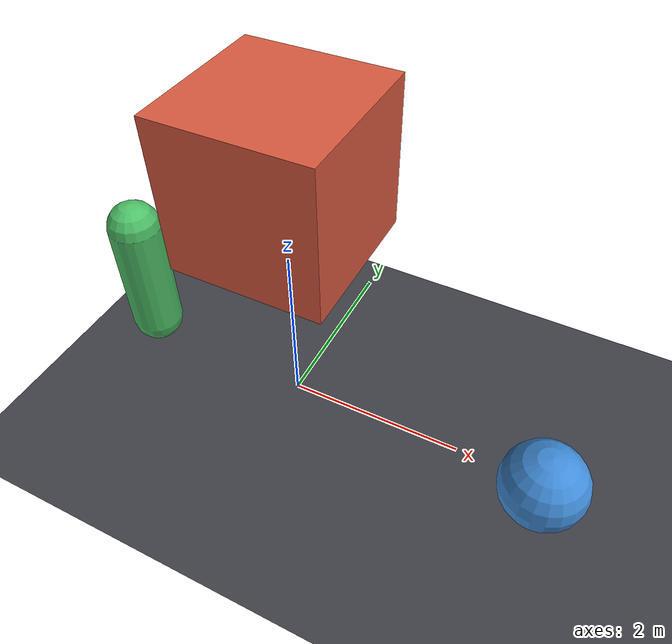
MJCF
<mujoco model="scene-query">
  <option gravity="0 0 0" timestep="0.002"/>
  <worldbody>
    <body name="sphere_body" pos="3 0 0">
      <geom name="sphere" type="sphere" size="0.5"
            rgba="0.25 0.55 0.85 1"/>
    </body>
    <geom name="box"     type="box"     pos="0 0 3"  size="0.8 0.8 0.8"
          rgba="0.85 0.35 0.25 1"/>
    <geom name="capsule" type="capsule" pos="-2 0 1" size="0.3 0.7"
          rgba="0.30 0.75 0.40 1"/>
    <geom name="ground"  type="plane"   pos="0 0 -1" size="5 5 0.01"
          rgba="0.25 0.25 0.28 1"/>
  </worldbody>
</mujoco>
